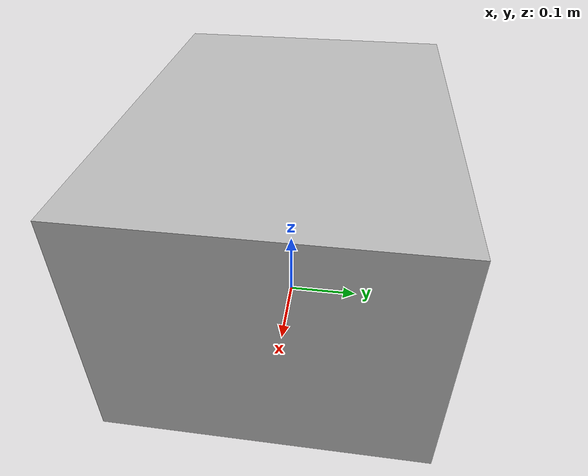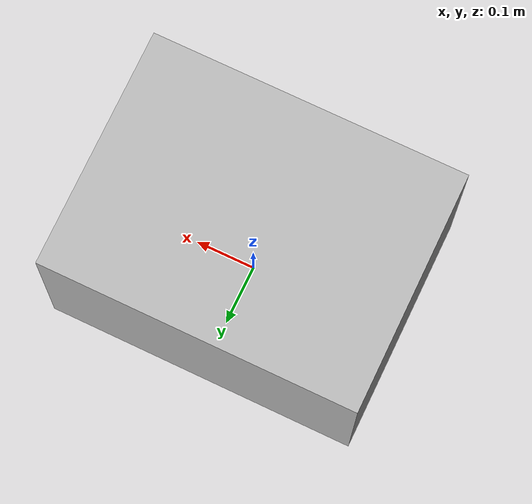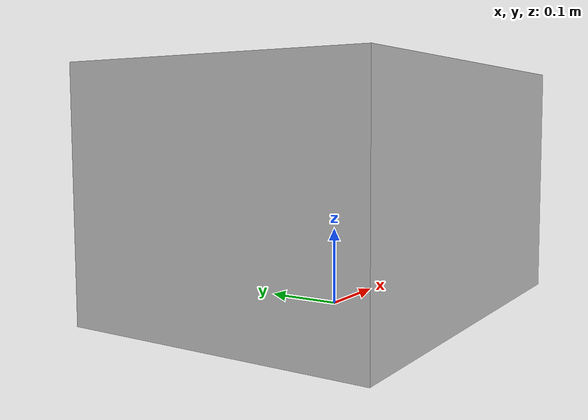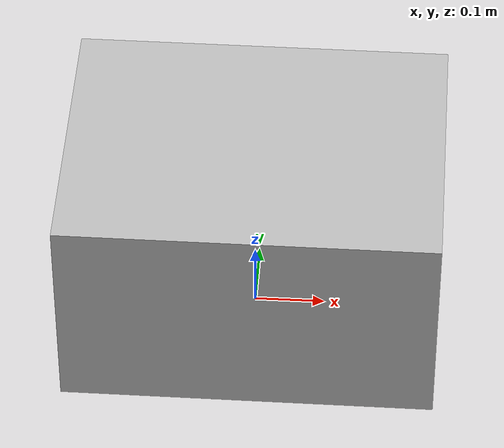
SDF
<sdf version="1.5">
  <model name="microwave">
    <static>true</static>
    <link name="link">
      <visual name="visual">
        <geometry>
          <mesh>
            <uri>model://microwave/meshes/microwave.obj</uri>
            <scale>0.01 0.01 0.01</scale>
          </mesh>
        </geometry>
      </visual>
    </link>
  </model>
</sdf>
